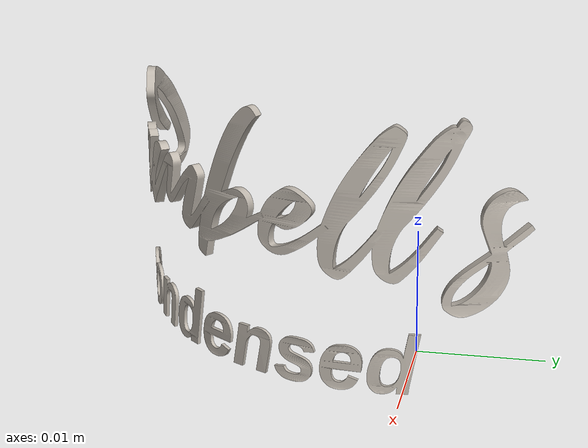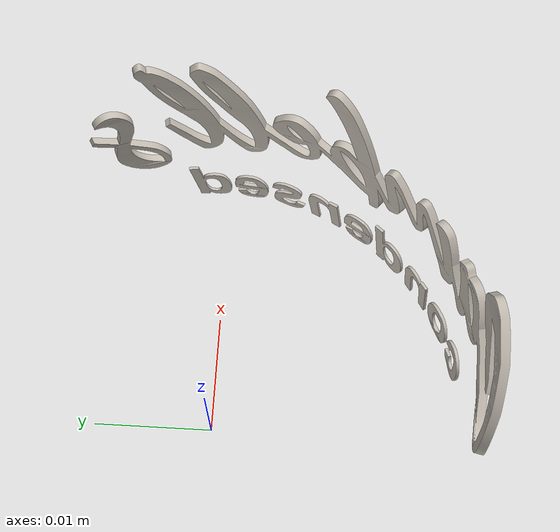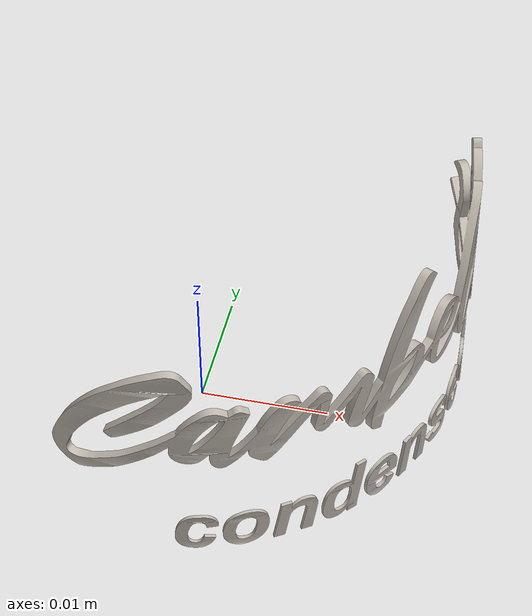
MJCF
<mujoco model="canned_food_5">
  <asset>
    <texture file="/home/abhiram03/Desktop/mimicgen/robosuite-kitchen/robosuite/models/assets/textures/ceramic.png" name="tex-canned_food_5" type="2d"/>
    <material name="canned_food_5" reflectance="0.5" texrepeat="1 1" texture="tex-canned_food_5" texuniform="false"/>
    <mesh file="visual/model_normalized_0.obj" name="model_normalized_0_vis" scale="0.06000000000000002 0.06000000000000002 0.06000000000000002" refquat="1.0 0.0 0.0 0.0"/>
    <mesh file="collision/model_normalized_collision_13.obj" name="model_normalized_collision_13._coll" scale="0.06000000000000002 0.06000000000000002 0.06000000000000002" refquat="1.0 0.0 0.0 0.0"/>
    <mesh file="collision/model_normalized_collision_15.obj" name="model_normalized_collision_15._coll" scale="0.06000000000000002 0.06000000000000002 0.06000000000000002" refquat="1.0 0.0 0.0 0.0"/>
    <mesh file="collision/model_normalized_collision_10.obj" name="model_normalized_collision_10._coll" scale="0.06000000000000002 0.06000000000000002 0.06000000000000002" refquat="1.0 0.0 0.0 0.0"/>
    <mesh file="collision/model_normalized_collision_26.obj" name="model_normalized_collision_26._coll" scale="0.06000000000000002 0.06000000000000002 0.06000000000000002" refquat="1.0 0.0 0.0 0.0"/>
    <mesh file="collision/model_normalized_collision_25.obj" name="model_normalized_collision_25._coll" scale="0.06000000000000002 0.06000000000000002 0.06000000000000002" refquat="1.0 0.0 0.0 0.0"/>
    <mesh file="collision/model_normalized_collision_5.obj" name="model_normalized_collision_5._coll" scale="0.06000000000000002 0.06000000000000002 0.06000000000000002" refquat="1.0 0.0 0.0 0.0"/>
    <mesh file="collision/model_normalized_collision_31.obj" name="model_normalized_collision_31._coll" scale="0.06000000000000002 0.06000000000000002 0.06000000000000002" refquat="1.0 0.0 0.0 0.0"/>
    <mesh file="collision/model_normalized_collision_3.obj" name="model_normalized_collision_3._coll" scale="0.06000000000000002 0.06000000000000002 0.06000000000000002" refquat="1.0 0.0 0.0 0.0"/>
    <mesh file="collision/model_normalized_collision_14.obj" name="model_normalized_collision_14._coll" scale="0.06000000000000002 0.06000000000000002 0.06000000000000002" refquat="1.0 0.0 0.0 0.0"/>
    <mesh file="collision/model_normalized_collision_28.obj" name="model_normalized_collision_28._coll" scale="0.06000000000000002 0.06000000000000002 0.06000000000000002" refquat="1.0 0.0 0.0 0.0"/>
    <mesh file="collision/model_normalized_collision_11.obj" name="model_normalized_collision_11._coll" scale="0.06000000000000002 0.06000000000000002 0.06000000000000002" refquat="1.0 0.0 0.0 0.0"/>
    <mesh file="collision/model_normalized_collision_29.obj" name="model_normalized_collision_29._coll" scale="0.06000000000000002 0.06000000000000002 0.06000000000000002" refquat="1.0 0.0 0.0 0.0"/>
    <mesh file="collision/model_normalized_collision_24.obj" name="model_normalized_collision_24._coll" scale="0.06000000000000002 0.06000000000000002 0.06000000000000002" refquat="1.0 0.0 0.0 0.0"/>
    <mesh file="collision/model_normalized_collision_1.obj" name="model_normalized_collision_1._coll" scale="0.06000000000000002 0.06000000000000002 0.06000000000000002" refquat="1.0 0.0 0.0 0.0"/>
    <mesh file="collision/model_normalized_collision_0.obj" name="model_normalized_collision_0._coll" scale="0.06000000000000002 0.06000000000000002 0.06000000000000002" refquat="1.0 0.0 0.0 0.0"/>
    <mesh file="collision/model_normalized_collision_27.obj" name="model_normalized_collision_27._coll" scale="0.06000000000000002 0.06000000000000002 0.06000000000000002" refquat="1.0 0.0 0.0 0.0"/>
    <mesh file="collision/model_normalized_collision_9.obj" name="model_normalized_collision_9._coll" scale="0.06000000000000002 0.06000000000000002 0.06000000000000002" refquat="1.0 0.0 0.0 0.0"/>
    <mesh file="collision/model_normalized_collision_19.obj" name="model_normalized_collision_19._coll" scale="0.06000000000000002 0.06000000000000002 0.06000000000000002" refquat="1.0 0.0 0.0 0.0"/>
    <mesh file="collision/model_normalized_collision_21.obj" name="model_normalized_collision_21._coll" scale="0.06000000000000002 0.06000000000000002 0.06000000000000002" refquat="1.0 0.0 0.0 0.0"/>
    <mesh file="collision/model_normalized_collision_30.obj" name="model_normalized_collision_30._coll" scale="0.06000000000000002 0.06000000000000002 0.06000000000000002" refquat="1.0 0.0 0.0 0.0"/>
    <mesh file="collision/model_normalized_collision_20.obj" name="model_normalized_collision_20._coll" scale="0.06000000000000002 0.06000000000000002 0.06000000000000002" refquat="1.0 0.0 0.0 0.0"/>
    <mesh file="collision/model_normalized_collision_2.obj" name="model_normalized_collision_2._coll" scale="0.06000000000000002 0.06000000000000002 0.06000000000000002" refquat="1.0 0.0 0.0 0.0"/>
    <mesh file="collision/model_normalized_collision_7.obj" name="model_normalized_collision_7._coll" scale="0.06000000000000002 0.06000000000000002 0.06000000000000002" refquat="1.0 0.0 0.0 0.0"/>
    <mesh file="collision/model_normalized_collision_22.obj" name="model_normalized_collision_22._coll" scale="0.06000000000000002 0.06000000000000002 0.06000000000000002" refquat="1.0 0.0 0.0 0.0"/>
    <mesh file="collision/model_normalized_collision_16.obj" name="model_normalized_collision_16._coll" scale="0.06000000000000002 0.06000000000000002 0.06000000000000002" refquat="1.0 0.0 0.0 0.0"/>
    <mesh file="collision/model_normalized_collision_8.obj" name="model_normalized_collision_8._coll" scale="0.06000000000000002 0.06000000000000002 0.06000000000000002" refquat="1.0 0.0 0.0 0.0"/>
    <mesh file="collision/model_normalized_collision_6.obj" name="model_normalized_collision_6._coll" scale="0.06000000000000002 0.06000000000000002 0.06000000000000002" refquat="1.0 0.0 0.0 0.0"/>
    <mesh file="collision/model_normalized_collision_18.obj" name="model_normalized_collision_18._coll" scale="0.06000000000000002 0.06000000000000002 0.06000000000000002" refquat="1.0 0.0 0.0 0.0"/>
    <mesh file="collision/model_normalized_collision_17.obj" name="model_normalized_collision_17._coll" scale="0.06000000000000002 0.06000000000000002 0.06000000000000002" refquat="1.0 0.0 0.0 0.0"/>
    <mesh file="collision/model_normalized_collision_12.obj" name="model_normalized_collision_12._coll" scale="0.06000000000000002 0.06000000000000002 0.06000000000000002" refquat="1.0 0.0 0.0 0.0"/>
    <mesh file="collision/model_normalized_collision_4.obj" name="model_normalized_collision_4._coll" scale="0.06000000000000002 0.06000000000000002 0.06000000000000002" refquat="1.0 0.0 0.0 0.0"/>
    <mesh file="collision/model_normalized_collision_23.obj" name="model_normalized_collision_23._coll" scale="0.06000000000000002 0.06000000000000002 0.06000000000000002" refquat="1.0 0.0 0.0 0.0"/>
    <texture type="2d" name="0bb6e3ebf0fd_canned_food__3d_ass_texture_kd" file="visual/0bb6e3ebf0fd_canned_food__3d_ass_texture_kd.png"/>
    <material name="Material_0" texture="0bb6e3ebf0fd_canned_food__3d_ass_texture_kd" specular="0.5" shininess="0.5"/>
  </asset>
  <worldbody>
    <body>
      <body name="object">
        <geom solimp="0.998 0.998 0.001" solref="0.001 1" density="100" friction="0.95 0.3 0.1" type="mesh" mesh="model_normalized_0_vis" conaffinity="0" contype="0" group="1" material="Material_0"/>
        <geom solimp="0.998 0.998 0.001" solref="0.001 1" density="100" friction="0.95 0.3 0.1" type="mesh" mesh="model_normalized_collision_13._coll" group="0" rgba="0.8 0.8 0.8 0.0"/>
        <geom solimp="0.998 0.998 0.001" solref="0.001 1" density="100" friction="0.95 0.3 0.1" type="mesh" mesh="model_normalized_collision_15._coll" group="0" rgba="0.8 0.8 0.8 0.0"/>
        <geom solimp="0.998 0.998 0.001" solref="0.001 1" density="100" friction="0.95 0.3 0.1" type="mesh" mesh="model_normalized_collision_10._coll" group="0" rgba="0.8 0.8 0.8 0.0"/>
        <geom solimp="0.998 0.998 0.001" solref="0.001 1" density="100" friction="0.95 0.3 0.1" type="mesh" mesh="model_normalized_collision_26._coll" group="0" rgba="0.8 0.8 0.8 0.0"/>
        <geom solimp="0.998 0.998 0.001" solref="0.001 1" density="100" friction="0.95 0.3 0.1" type="mesh" mesh="model_normalized_collision_25._coll" group="0" rgba="0.8 0.8 0.8 0.0"/>
        <geom solimp="0.998 0.998 0.001" solref="0.001 1" density="100" friction="0.95 0.3 0.1" type="mesh" mesh="model_normalized_collision_5._coll" group="0" rgba="0.8 0.8 0.8 0.0"/>
        <geom solimp="0.998 0.998 0.001" solref="0.001 1" density="100" friction="0.95 0.3 0.1" type="mesh" mesh="model_normalized_collision_31._coll" group="0" rgba="0.8 0.8 0.8 0.0"/>
        <geom solimp="0.998 0.998 0.001" solref="0.001 1" density="100" friction="0.95 0.3 0.1" type="mesh" mesh="model_normalized_collision_3._coll" group="0" rgba="0.8 0.8 0.8 0.0"/>
        <geom solimp="0.998 0.998 0.001" solref="0.001 1" density="100" friction="0.95 0.3 0.1" type="mesh" mesh="model_normalized_collision_14._coll" group="0" rgba="0.8 0.8 0.8 0.0"/>
        <geom solimp="0.998 0.998 0.001" solref="0.001 1" density="100" friction="0.95 0.3 0.1" type="mesh" mesh="model_normalized_collision_28._coll" group="0" rgba="0.8 0.8 0.8 0.0"/>
        <geom solimp="0.998 0.998 0.001" solref="0.001 1" density="100" friction="0.95 0.3 0.1" type="mesh" mesh="model_normalized_collision_11._coll" group="0" rgba="0.8 0.8 0.8 0.0"/>
        <geom solimp="0.998 0.998 0.001" solref="0.001 1" density="100" friction="0.95 0.3 0.1" type="mesh" mesh="model_normalized_collision_29._coll" group="0" rgba="0.8 0.8 0.8 0.0"/>
        <geom solimp="0.998 0.998 0.001" solref="0.001 1" density="100" friction="0.95 0.3 0.1" type="mesh" mesh="model_normalized_collision_24._coll" group="0" rgba="0.8 0.8 0.8 0.0"/>
        <geom solimp="0.998 0.998 0.001" solref="0.001 1" density="100" friction="0.95 0.3 0.1" type="mesh" mesh="model_normalized_collision_1._coll" group="0" rgba="0.8 0.8 0.8 0.0"/>
        <geom solimp="0.998 0.998 0.001" solref="0.001 1" density="100" friction="0.95 0.3 0.1" type="mesh" mesh="model_normalized_collision_0._coll" group="0" rgba="0.8 0.8 0.8 0.0"/>
        <geom solimp="0.998 0.998 0.001" solref="0.001 1" density="100" friction="0.95 0.3 0.1" type="mesh" mesh="model_normalized_collision_27._coll" group="0" rgba="0.8 0.8 0.8 0.0"/>
        <geom solimp="0.998 0.998 0.001" solref="0.001 1" density="100" friction="0.95 0.3 0.1" type="mesh" mesh="model_normalized_collision_9._coll" group="0" rgba="0.8 0.8 0.8 0.0"/>
        <geom solimp="0.998 0.998 0.001" solref="0.001 1" density="100" friction="0.95 0.3 0.1" type="mesh" mesh="model_normalized_collision_19._coll" group="0" rgba="0.8 0.8 0.8 0.0"/>
        <geom solimp="0.998 0.998 0.001" solref="0.001 1" density="100" friction="0.95 0.3 0.1" type="mesh" mesh="model_normalized_collision_21._coll" group="0" rgba="0.8 0.8 0.8 0.0"/>
        <geom solimp="0.998 0.998 0.001" solref="0.001 1" density="100" friction="0.95 0.3 0.1" type="mesh" mesh="model_normalized_collision_30._coll" group="0" rgba="0.8 0.8 0.8 0.0"/>
        <geom solimp="0.998 0.998 0.001" solref="0.001 1" density="100" friction="0.95 0.3 0.1" type="mesh" mesh="model_normalized_collision_20._coll" group="0" rgba="0.8 0.8 0.8 0.0"/>
        <geom solimp="0.998 0.998 0.001" solref="0.001 1" density="100" friction="0.95 0.3 0.1" type="mesh" mesh="model_normalized_collision_2._coll" group="0" rgba="0.8 0.8 0.8 0.0"/>
        <geom solimp="0.998 0.998 0.001" solref="0.001 1" density="100" friction="0.95 0.3 0.1" type="mesh" mesh="model_normalized_collision_7._coll" group="0" rgba="0.8 0.8 0.8 0.0"/>
        <geom solimp="0.998 0.998 0.001" solref="0.001 1" density="100" friction="0.95 0.3 0.1" type="mesh" mesh="model_normalized_collision_22._coll" group="0" rgba="0.8 0.8 0.8 0.0"/>
        <geom solimp="0.998 0.998 0.001" solref="0.001 1" density="100" friction="0.95 0.3 0.1" type="mesh" mesh="model_normalized_collision_16._coll" group="0" rgba="0.8 0.8 0.8 0.0"/>
        <geom solimp="0.998 0.998 0.001" solref="0.001 1" density="100" friction="0.95 0.3 0.1" type="mesh" mesh="model_normalized_collision_8._coll" group="0" rgba="0.8 0.8 0.8 0.0"/>
        <geom solimp="0.998 0.998 0.001" solref="0.001 1" density="100" friction="0.95 0.3 0.1" type="mesh" mesh="model_normalized_collision_6._coll" group="0" rgba="0.8 0.8 0.8 0.0"/>
        <geom solimp="0.998 0.998 0.001" solref="0.001 1" density="100" friction="0.95 0.3 0.1" type="mesh" mesh="model_normalized_collision_18._coll" group="0" rgba="0.8 0.8 0.8 0.0"/>
        <geom solimp="0.998 0.998 0.001" solref="0.001 1" density="100" friction="0.95 0.3 0.1" type="mesh" mesh="model_normalized_collision_17._coll" group="0" rgba="0.8 0.8 0.8 0.0"/>
        <geom solimp="0.998 0.998 0.001" solref="0.001 1" density="100" friction="0.95 0.3 0.1" type="mesh" mesh="model_normalized_collision_12._coll" group="0" rgba="0.8 0.8 0.8 0.0"/>
        <geom solimp="0.998 0.998 0.001" solref="0.001 1" density="100" friction="0.95 0.3 0.1" type="mesh" mesh="model_normalized_collision_4._coll" group="0" rgba="0.8 0.8 0.8 0.0"/>
        <geom solimp="0.998 0.998 0.001" solref="0.001 1" density="100" friction="0.95 0.3 0.1" type="mesh" mesh="model_normalized_collision_23._coll" group="0" rgba="0.8 0.8 0.8 0.0"/>
      </body>
      <site rgba="0 0 0 0" size="0.005" pos="-3.000000015074279e-10 -3.294120000000068e-05 -0.02642233500000001" name="bottom_site"/>
      <site rgba="0 0 0 0" size="0.005" pos="-3.000000015074279e-10 -3.294120000000068e-05 0.026304939600000007" name="top_site"/>
      <site rgba="0 0 0 0" size="0.005" pos="0.030454546200000016 0.030421605000000008 -5.869770000000109e-05" name="horizontal_radius_site"/>
    </body>
  </worldbody>
</mujoco>
